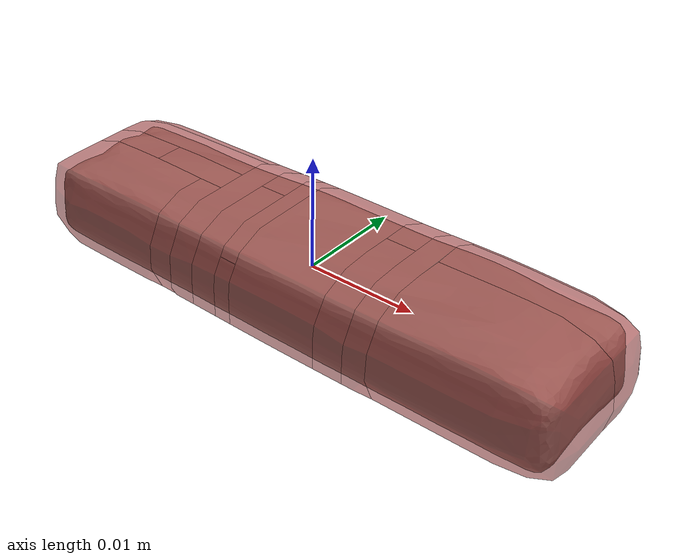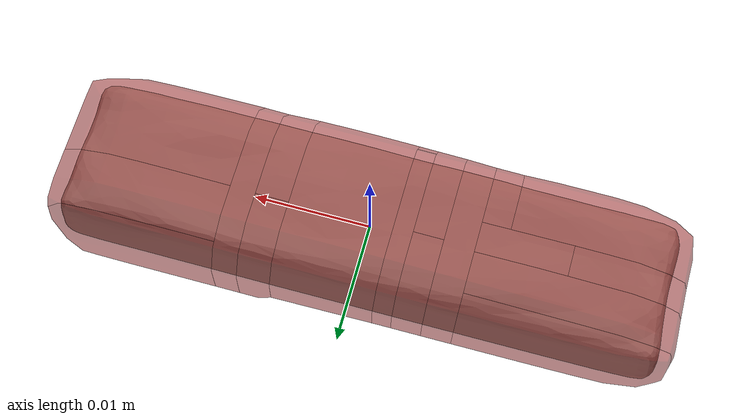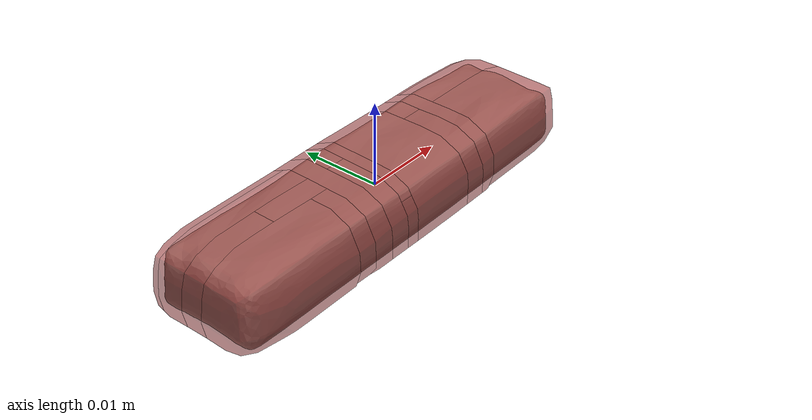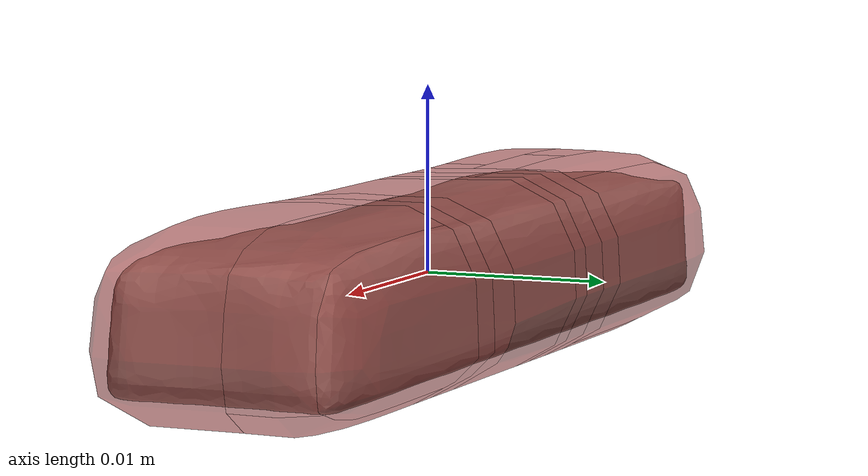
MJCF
<mujoco model="model">
  <compiler angle="radian"/>
  <asset>
    <mesh file="visual/CreamCheese009.obj" name="CreamCheese009_vis"/>
    <texture file="visual/T_BC001.png" name="CreamCheese009_material" type="2d"/>
    <material name="CreamCheese009_material" rgba="1 1 1 1.0" texture="CreamCheese009_material" shininess="0.10000002384185791" specular="0.33333333333333337"/>
    <mesh file="collision/CreamCheese009014.obj" name="CreamCheese009014_mesh"/>
    <mesh file="collision/CreamCheese009016.obj" name="CreamCheese009016_mesh"/>
    <mesh file="collision/CreamCheese009009.obj" name="CreamCheese009009_mesh"/>
    <mesh file="collision/CreamCheese009017.obj" name="CreamCheese009017_mesh"/>
    <mesh file="collision/CreamCheese009005.obj" name="CreamCheese009005_mesh"/>
    <mesh file="collision/CreamCheese009012.obj" name="CreamCheese009012_mesh"/>
    <mesh file="collision/CreamCheese009019.obj" name="CreamCheese009019_mesh"/>
    <mesh file="collision/CreamCheese009008.obj" name="CreamCheese009008_mesh"/>
    <mesh file="collision/CreamCheese009007.obj" name="CreamCheese009007_mesh"/>
    <mesh file="collision/CreamCheese009006.obj" name="CreamCheese009006_mesh"/>
    <mesh file="collision/CreamCheese009002.obj" name="CreamCheese009002_mesh"/>
    <mesh file="collision/CreamCheese009001.obj" name="CreamCheese009001_mesh"/>
    <mesh file="collision/CreamCheese009004.obj" name="CreamCheese009004_mesh"/>
    <mesh file="collision/CreamCheese009011.obj" name="CreamCheese009011_mesh"/>
    <mesh file="collision/CreamCheese009013.obj" name="CreamCheese009013_mesh"/>
    <mesh file="collision/CreamCheese009018.obj" name="CreamCheese009018_mesh"/>
    <mesh file="collision/CreamCheese009010.obj" name="CreamCheese009010_mesh"/>
    <mesh file="collision/CreamCheese009003.obj" name="CreamCheese009003_mesh"/>
    <mesh file="collision/CreamCheese009015.obj" name="CreamCheese009015_mesh"/>
  </asset>
  <default>
    <default class="visual">
      <geom conaffinity="0" contype="0" group="1" type="mesh"/>
    </default>
    <default class="collision">
      <geom group="0" rgba="0.5 0 0 0.5"/>
    </default>
    <default class="spawn">
      <geom group="0" rgba="1 1 1 0.5" contype="0" conaffinity="0"/>
      <site group="0" rgba="1 1 1 0.5"/>
    </default>
    <default class="region">
      <geom group="1" conaffinity="0" contype="0" rgba="0 1 0 0" mass="0"/>
    </default>
  </default>
  <worldbody>
    <body>
      <body name="object">
        <geom mesh="CreamCheese009_vis" type="mesh" solimp="0.998 0.998 0.001" solref="0.001 1" density="100" friction="0.95 0.3 0.1" class="visual" material="CreamCheese009_material"/>
        <geom mesh="CreamCheese009014_mesh" type="mesh" class="collision"/>
        <geom mesh="CreamCheese009016_mesh" type="mesh" class="collision"/>
        <geom mesh="CreamCheese009009_mesh" type="mesh" class="collision"/>
        <geom mesh="CreamCheese009017_mesh" type="mesh" class="collision"/>
        <geom mesh="CreamCheese009005_mesh" type="mesh" class="collision"/>
        <geom mesh="CreamCheese009012_mesh" type="mesh" class="collision"/>
        <geom mesh="CreamCheese009019_mesh" type="mesh" class="collision"/>
        <geom mesh="CreamCheese009008_mesh" type="mesh" class="collision"/>
        <geom mesh="CreamCheese009007_mesh" type="mesh" class="collision"/>
        <geom mesh="CreamCheese009006_mesh" type="mesh" class="collision"/>
        <geom mesh="CreamCheese009002_mesh" type="mesh" class="collision"/>
        <geom mesh="CreamCheese009001_mesh" type="mesh" class="collision"/>
        <geom mesh="CreamCheese009004_mesh" type="mesh" class="collision"/>
        <geom mesh="CreamCheese009011_mesh" type="mesh" class="collision"/>
        <geom mesh="CreamCheese009013_mesh" type="mesh" class="collision"/>
        <geom mesh="CreamCheese009018_mesh" type="mesh" class="collision"/>
        <geom mesh="CreamCheese009010_mesh" type="mesh" class="collision"/>
        <geom mesh="CreamCheese009003_mesh" type="mesh" class="collision"/>
        <geom mesh="CreamCheese009015_mesh" type="mesh" class="collision"/>
        <geom class="region" name="reg_bbox" type="box" pos="8.634999999999893e-06 -3.2100000000000184e-06 -0.00010740500000000009" size="0.026809675 0.00773059 0.005026704999999999"/>
      </body>
    </body>
  </worldbody>
  <actuator/>
</mujoco>
